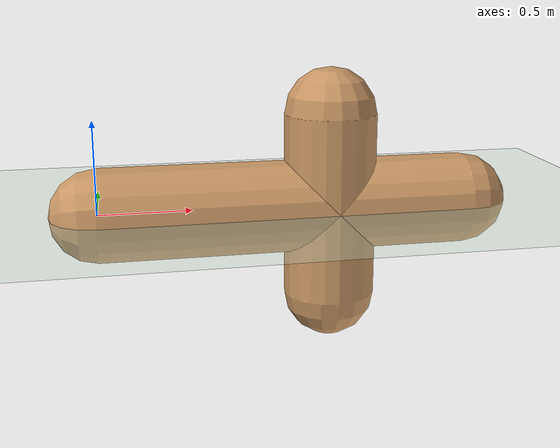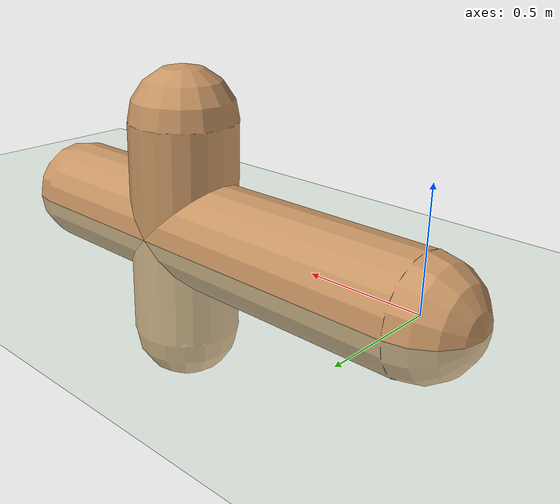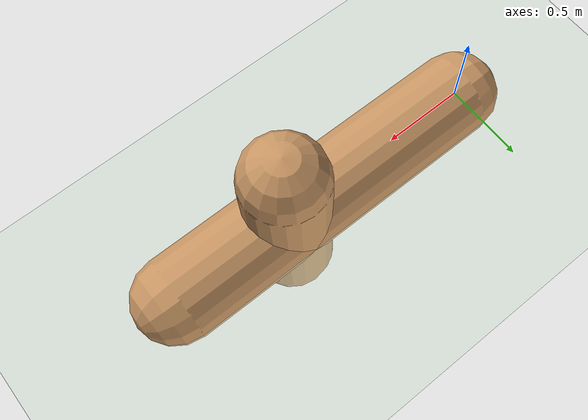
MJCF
<mujoco model="capsule">
  <compiler angle="degree" coordinate="local" inertiafromgeom="true"/>
  <option timestep="0.01" />
  <default>
    <joint armature="1" damping="1"/>
    <geom conaffinity="0" condim="3" density="5.0" friction="1 0.5 0.5" margin="0.01" rgba="0.8 0.6 0.4 1"/>
  </default>
  <worldbody>
    <geom conaffinity="1" condim="3" name="floor" pos="0 0 0" rgba="0.8 0.9 0.8 1" size="40 40 40" type="plane"/>
    <body name="worldbody" pos="1 0 0" quat="0.7 0 0.7 0">
      <geom name="capw" pos="0 0 0" size="0.25 1.0" type="capsule"/>
      <body name="body2" pos="0 0 0.25" quat="0.7 0.7 0 0">
        <joint axis="1 0 0" name="free2" pos="0 0 0" type="free"/>
        <geom name="cap1" fromto="-0.5 0.0 0 0.5 0.0 0" pos="0 0 0" size="0.25" type="capsule"/>
      </body>
    </body>
  </worldbody>
</mujoco>
